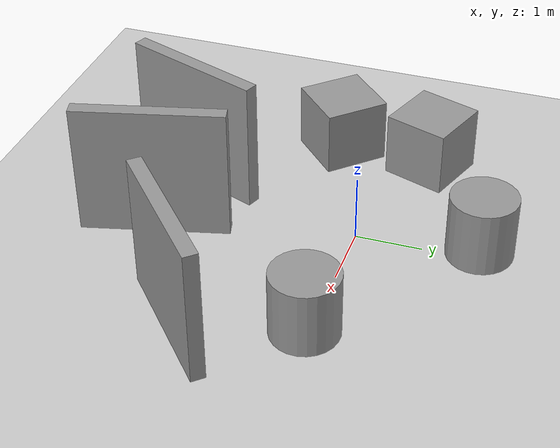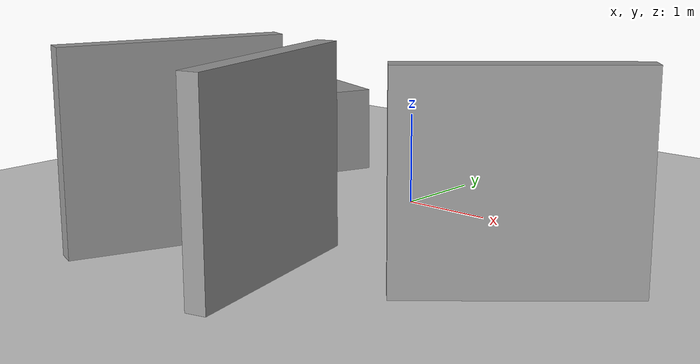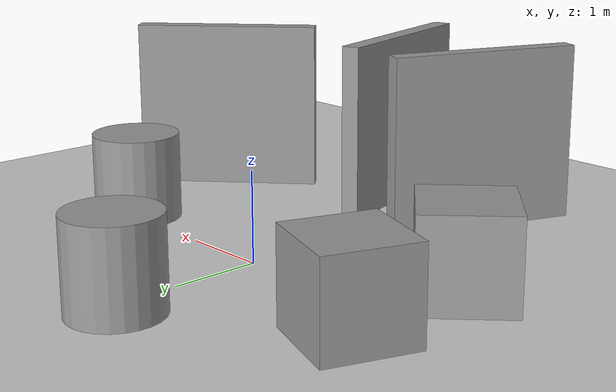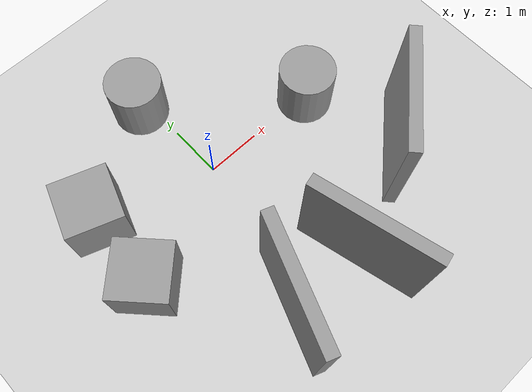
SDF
<sdf version="1.7">
 <world name="default">
  <light name="sun" type="directional">
   <pose>0 0 10 0 -0 0</pose>
   <diffuse>0.8 0.8 0.8 1</diffuse>
   <specular>0.2 0.2 0.2 1</specular>
   <attenuation>
    <range>1000</range>
    <constant>0.9</constant>
    <linear>0.01</linear>
    <quadratic>0.001</quadratic>
   </attenuation>
   <direction>-0.5 0.1 -0.9</direction>
   <spot><inner_angle>0</inner_angle><outer_angle>0</outer_angle><falloff>0</falloff></spot>
  </light>
  <model name="ground_plane">
   <static>1</static>
   <link name="link">
    <collision name="collision">
     <geometry><plane><normal>0 0 1</normal><size>100 100</size></plane></geometry>
     <surface><friction><ode><mu>100</mu><mu2>50</mu2></ode></friction></surface>
    </collision>
    <visual name="visual">
     <cast_shadows>0</cast_shadows>
     <geometry><plane><normal>0 0 1</normal><size>100 100</size></plane></geometry>
     <material>
      <ambient>0.8 0.8 0.8 1</ambient>
      <diffuse>0.8 0.8 0.8 1</diffuse>
      <specular>0 0 0 0</specular>
      <emissive>0 0 0 1</emissive>
     </material>
    </visual>
   </link>
  </model>
  <gravity>0 0 -9.8</gravity>
  <magnetic_field>6e-06 2.3e-05 -4.2e-05</magnetic_field>
  <atmosphere type="adiabatic"/>
  <physics type="ode">
   <max_step_size>0.001</max_step_size>
   <real_time_factor>1</real_time_factor>
   <real_time_update_rate>1000</real_time_update_rate>
  </physics>
  <scene><ambient>0.4 0.4 0.4 1</ambient><background>0.7 0.7 0.7 1</background><shadows>1</shadows></scene>
  <audio><device>default</device></audio>
  <spherical_coordinates>
   <surface_model>EARTH_WGS84</surface_model>
   <latitude_deg>0</latitude_deg>
   <longitude_deg>0</longitude_deg>
   <elevation>0</elevation>
   <heading_deg>0</heading_deg>
  </spherical_coordinates>
  <model name="unit_box_01">
   <pose>-2.08461 0.616461 0.5 -0 -0 -0.34157</pose>
   <link name="link">
    <inertial>
     <mass>1</mass>
     <inertia>
      <ixx>0.166667</ixx>
      <ixy>0</ixy>
      <ixz>0</ixz>
      <iyy>0.166667</iyy>
      <iyz>0</iyz>
      <izz>0.166667</izz>
     </inertia>
    </inertial>
    <collision name="collision"><geometry><box><size>1 1 1</size></box></geometry></collision>
    <visual name="visual">
     <geometry><box><size>1 1 1</size></box></geometry>
     <material>
      <script><name>Gazebo/Grey</name><uri>file://media/materials/scripts/gazebo.material</uri></script>
     </material>
    </visual>
   </link>
  </model>
  <model name="unit_cylinder_01">
   <pose>-0.180557 1.80452 0.499991 -1e-06 -1e-06 0.099703</pose>
   <link name="link">
    <inertial>
     <mass>1</mass>
     <inertia><ixx>0.145833</ixx><ixy>0</ixy><ixz>0</ixz><iyy>0.145833</iyy><iyz>0</iyz><izz>0.125</izz></inertia>
    </inertial>
    <collision name="collision">
     <geometry><cylinder><radius>0.5</radius><length>1</length></cylinder></geometry>
    </collision>
    <visual name="visual">
     <geometry><cylinder><radius>0.5</radius><length>1</length></cylinder></geometry>
     <material>
      <script><name>Gazebo/Grey</name><uri>file://media/materials/scripts/gazebo.material</uri></script>
     </material>
    </visual>
   </link>
  </model>
  <model name="unit_cylinder_02">
   <pose>2.20006 -0.068019 0.5 0 -0 0.113795</pose>
   <link name="link">
    <inertial>
     <mass>1</mass>
     <inertia><ixx>0.145833</ixx><ixy>0</ixy><ixz>0</ixz><iyy>0.145833</iyy><iyz>0</iyz><izz>0.125</izz></inertia>
    </inertial>
    <collision name="collision">
     <geometry><cylinder><radius>0.5</radius><length>0.999999</length></cylinder></geometry>
    </collision>
    <visual name="visual">
     <geometry><cylinder><radius>0.5</radius><length>0.999999</length></cylinder></geometry>
     <material>
      <script><name>Gazebo/Grey</name><uri>file://media/materials/scripts/gazebo.material</uri></script>
     </material>
    </visual>
   </link>
  </model>
  <model name="unit_box_02">
   <pose>-2.16285 -0.848974 0.5 0 0 -0.807179</pose>
   <link name="link">
    <inertial>
     <mass>1</mass>
     <inertia>
      <ixx>0.166667</ixx>
      <ixy>0</ixy>
      <ixz>0</ixz>
      <iyy>0.166667</iyy>
      <iyz>0</iyz>
      <izz>0.166667</izz>
     </inertia>
    </inertial>
    <collision name="collision"><geometry><box><size>1 1 1</size></box></geometry></collision>
    <visual name="visual">
     <geometry><box><size>1 1 1</size></box></geometry>
     <material>
      <script><name>Gazebo/Grey</name><uri>file://media/materials/scripts/gazebo.material</uri></script>
     </material>
    </visual>
   </link>
  </model>
  <model name="unit_box_03">
   <pose>0.695242 -2.87245 1.01164 -4e-06 -0 -1.32272</pose>
   <link name="link">
    <inertial>
     <mass>1</mass>
     <inertia>
      <ixx>0.166667</ixx>
      <ixy>0</ixy>
      <ixz>0</ixz>
      <iyy>0.166667</iyy>
      <iyz>0</iyz>
      <izz>0.166667</izz>
     </inertia>
    </inertial>
    <collision name="collision"><geometry><box><size>2.22941 0.213334 2.02328</size></box></geometry></collision>
    <visual name="visual">
     <geometry><box><size>2.22941 0.213334 2.02328</size></box></geometry>
     <material>
      <script><name>Gazebo/Grey</name><uri>file://media/materials/scripts/gazebo.material</uri></script>
     </material>
    </visual>
   </link>
  </model>
  <model name="unit_box_04">
   <pose>-0.723784 -2.74629 1.01164 3e-06 0 -1.93196</pose>
   <link name="link">
    <inertial>
     <mass>1</mass>
     <inertia>
      <ixx>0.166667</ixx>
      <ixy>0</ixy>
      <ixz>0</ixz>
      <iyy>0.166667</iyy>
      <iyz>0</iyz>
      <izz>0.166667</izz>
     </inertia>
    </inertial>
    <collision name="collision"><geometry><box><size>2.22941 0.213334 2.02328</size></box></geometry></collision>
    <visual name="visual">
     <geometry><box><size>2.22941 0.213334 2.02328</size></box></geometry>
     <material>
      <script><name>Gazebo/Grey</name><uri>file://media/materials/scripts/gazebo.material</uri></script>
     </material>
    </visual>
   </link>
  </model>
  <model name="unit_box_05">
   <pose>2.67224 -1.81108 1.01164 2e-06 4e-06 -2.41202</pose>
   <link name="link">
    <inertial>
     <mass>1</mass>
     <inertia>
      <ixx>0.166667</ixx>
      <ixy>0</ixy>
      <ixz>0</ixz>
      <iyy>0.166667</iyy>
      <iyz>0</iyz>
      <izz>0.166667</izz>
     </inertia>
    </inertial>
    <collision name="collision"><geometry><box><size>2.22941 0.213334 2.02328</size></box></geometry></collision>
    <visual name="visual">
     <geometry><box><size>2.22941 0.213334 2.02328</size></box></geometry>
     <material>
      <script><name>Gazebo/Grey</name><uri>file://media/materials/scripts/gazebo.material</uri></script>
     </material>
    </visual>
   </link>
  </model>
  <plugin name="entity_states" filename="libgazebo_ros_state.so"/>
 </world>
</sdf>
